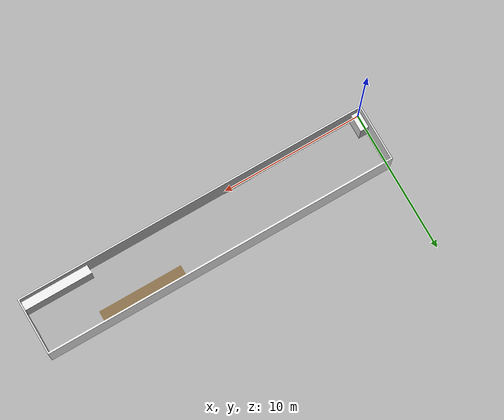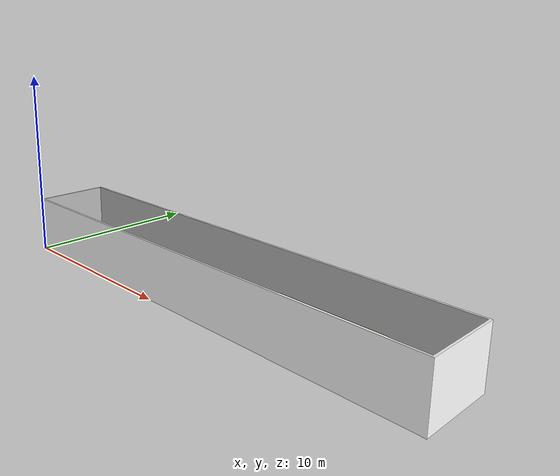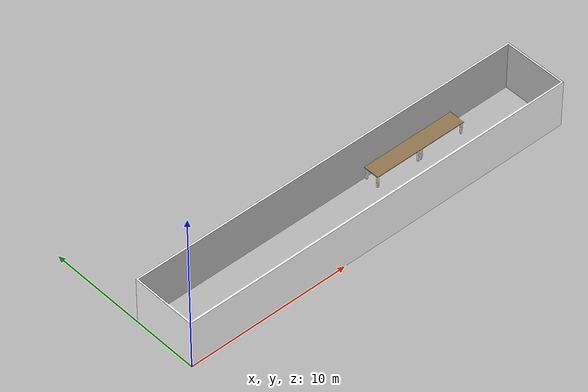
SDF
<?xml version='1.0'?>
<sdf version='1.6'>
  <model name='room_25x4'>
    <link name='link_0'>
      <visual name='visual'>
        <geometry>
          <mesh>
            <uri>model://room_25x4/25x4.dae</uri>
            <scale>1 1 1</scale>
          </mesh>
        </geometry>
        <cast_shadows>0</cast_shadows>
      </visual>
      <collision name='collision'>
        <geometry>
          <mesh>
            <uri>model://room_25x4/25x4.dae</uri>
          </mesh>
        </geometry>
      </collision>
    </link>
    <static>1</static>
  </model>
</sdf>
